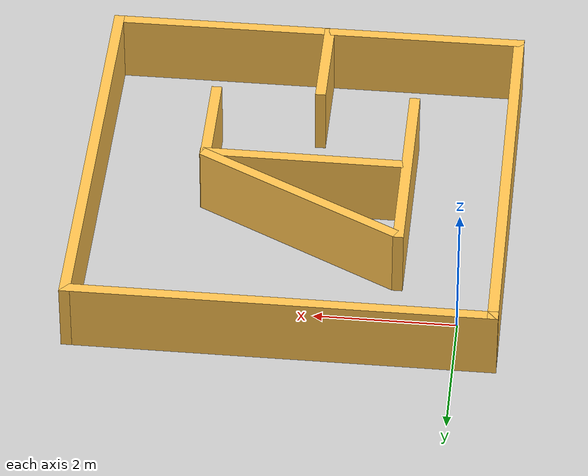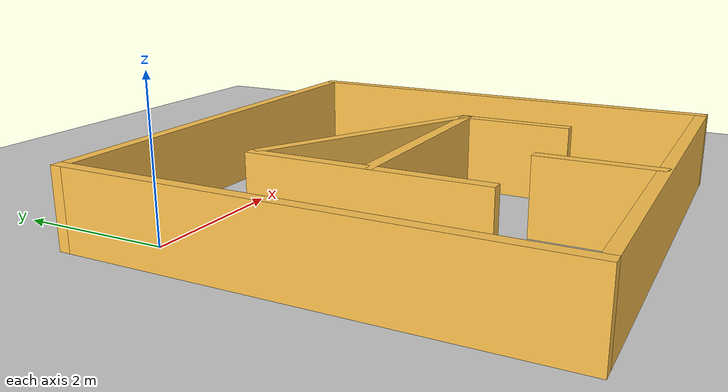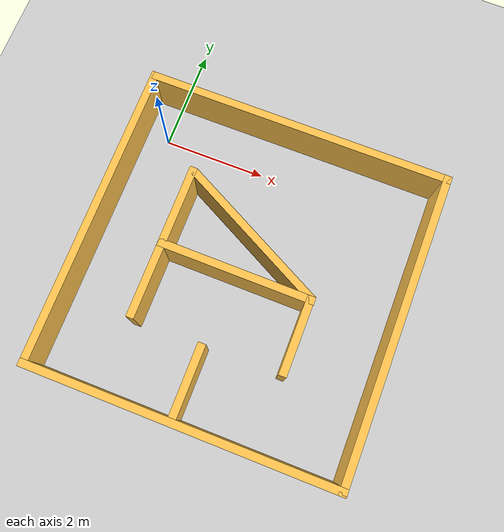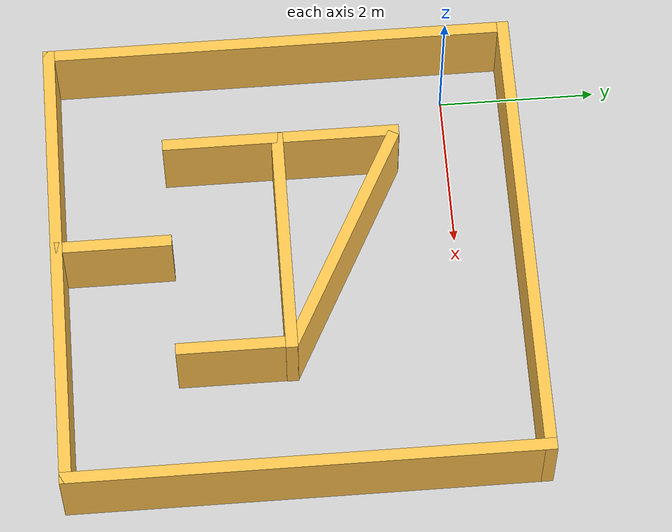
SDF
<sdf version="1.4">
 <world name="default">
  <light name="sun" type="directional">
   <pose>0 0 10 0 -0 0</pose>
   <diffuse>0.8 0.8 0.8 1</diffuse>
   <specular>0.2 0.2 0.2 1</specular>
   <attenuation>
    <range>1000</range>
    <constant>0.9</constant>
    <linear>0.01</linear>
    <quadratic>0.001</quadratic>
   </attenuation>
   <direction>0.5 0.1 -0.9</direction>
  </light>
  <model name="ground_plane">
   <static>1</static>
   <link name="link">
    <collision name="collision">
     <geometry><plane><normal>0 0 1</normal><size>100 100</size></plane></geometry>
     <surface><friction><ode><mu>100</mu><mu2>50</mu2></ode></friction></surface>
    </collision>
    <visual name="visual">
     <cast_shadows>0</cast_shadows>
     <geometry><plane><normal>0 0 1</normal><size>100 100</size></plane></geometry>
     <material>
      <script><uri>file://media/materials/scripts/gazebo.material</uri><name>Gazebo/Grey</name></script>
     </material>
    </visual>
    <velocity_decay><linear>0</linear><angular>0</angular></velocity_decay>
   </link>
  </model>
  <scene><ambient>0.4 0.4 0.4 1</ambient><background>0.7 0.7 0.7 1</background><shadows>0</shadows></scene>
  <physics type="ode">
   <real_time_update_rate>1000.0</real_time_update_rate>
   <max_step_size>0.001</max_step_size>
   <real_time_factor>1</real_time_factor>
   <ode>
    <solver>
     <type>quick</type>
     <iters>150</iters>
     <precon_iters>0</precon_iters>
     <sor>1.400000</sor>
     <use_dynamic_moi_rescaling>1</use_dynamic_moi_rescaling>
    </solver>
    <constraints>
     <cfm>0.00001</cfm>
     <erp>0.2</erp>
     <contact_max_correcting_vel>2000.000000</contact_max_correcting_vel>
     <contact_surface_layer>0.01000</contact_surface_layer>
    </constraints>
   </ode>
  </physics>
  <include><uri>model://Circuit_ql_1</uri><pose>2.4 -2.1 0 0 0 0</pose></include>
 </world>
</sdf>

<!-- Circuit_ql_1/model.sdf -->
<sdf version='1.5'>
  <model name='Circuit_ql_1'>
    <link name='Wall_10'>
      <pose frame=''>-0.0015 2.925 0 0 -0 3.14159</pose>
      <self_collide>0</self_collide>
      <kinematic>0</kinematic>
      <visual name='Wall_10_Visual'>
        <pose frame=''>0 0 0.5 0 -0 0</pose>
        <geometry>
          <box>
            <size>6 0.15 1</size>
          </box>
        </geometry>
        <material>
          <script>
            <uri>file://media/materials/scripts/gazebo.material</uri>
            <name>Gazebo/Grey</name>
          </script>
          <ambient>1 0.764706 0.305882 1</ambient>
          <shader type='pixel'/>
          <diffuse>0.7 0.7 0.7 1</diffuse>
          <specular>0.01 0.01 0.01 1</specular>
          <emissive>0 0 0 1</emissive>
        </material>
        <cast_shadows>1</cast_shadows>
        <transparency>0</transparency>
      </visual>
      <collision name='Wall_10_Collision'>
        <laser_retro>0</laser_retro>
        <max_contacts>10</max_contacts>
        <pose frame=''>0 0 0.5 0 -0 0</pose>
        <geometry>
          <box>
            <size>6 0.15 1</size>
          </box>
        </geometry>
        <surface>
          <friction>
            <ode>
              <mu>1</mu>
              <mu2>1</mu2>
              <fdir1>0 0 0</fdir1>
              <slip1>0</slip1>
              <slip2>0</slip2>
            </ode>
          </friction>
          <bounce>
            <restitution_coefficient>0</restitution_coefficient>
            <threshold>1e+06</threshold>
          </bounce>
          <contact>
            <collide_without_contact>0</collide_without_contact>
            <collide_without_contact_bitmask>1</collide_without_contact_bitmask>
            <collide_bitmask>1</collide_bitmask>
            <ode>
              <soft_cfm>0</soft_cfm>
              <soft_erp>0.2</soft_erp>
              <kp>1e+13</kp>
              <kd>1</kd>
              <max_vel>0.01</max_vel>
              <min_depth>0</min_depth>
            </ode>
            <bullet>
              <split_impulse>1</split_impulse>
              <split_impulse_penetration_threshold>-0.01</split_impulse_penetration_threshold>
              <soft_cfm>0</soft_cfm>
              <soft_erp>0.2</soft_erp>
              <kp>1e+13</kp>
              <kd>1</kd>
            </bullet>
          </contact>
        </surface>
      </collision>
    </link>
    <link name='Wall_11'>
      <pose frame=''>-2.9265 0 0 0 0 -1.5708</pose>
      <self_collide>0</self_collide>
      <kinematic>0</kinematic>
      <visual name='Wall_11_Visual'>
        <pose frame=''>0 0 0.5 0 -0 0</pose>
        <geometry>
          <box>
            <size>6 0.15 1</size>
          </box>
        </geometry>
        <material>
          <script>
            <uri>file://media/materials/scripts/gazebo.material</uri>
            <name>Gazebo/Grey</name>
          </script>
          <ambient>1 0.764706 0.305882 1</ambient>
          <shader type='pixel'/>
          <diffuse>0.7 0.7 0.7 1</diffuse>
          <specular>0.01 0.01 0.01 1</specular>
          <emissive>0 0 0 1</emissive>
        </material>
        <cast_shadows>1</cast_shadows>
        <transparency>0</transparency>
      </visual>
      <collision name='Wall_11_Collision'>
        <laser_retro>0</laser_retro>
        <max_contacts>10</max_contacts>
        <pose frame=''>0 0 0.5 0 -0 0</pose>
        <geometry>
          <box>
            <size>6 0.15 1</size>
          </box>
        </geometry>
        <surface>
          <friction>
            <ode>
              <mu>1</mu>
              <mu2>1</mu2>
              <fdir1>0 0 0</fdir1>
              <slip1>0</slip1>
              <slip2>0</slip2>
            </ode>
          </friction>
          <bounce>
            <restitution_coefficient>0</restitution_coefficient>
            <threshold>1e+06</threshold>
          </bounce>
          <contact>
            <collide_without_contact>0</collide_without_contact>
            <collide_without_contact_bitmask>1</collide_without_contact_bitmask>
            <collide_bitmask>1</collide_bitmask>
            <ode>
              <soft_cfm>0</soft_cfm>
              <soft_erp>0.2</soft_erp>
              <kp>1e+13</kp>
              <kd>1</kd>
              <max_vel>0.01</max_vel>
              <min_depth>0</min_depth>
            </ode>
            <bullet>
              <split_impulse>1</split_impulse>
              <split_impulse_penetration_threshold>-0.01</split_impulse_penetration_threshold>
              <soft_cfm>0</soft_cfm>
              <soft_erp>0.2</soft_erp>
              <kp>1e+13</kp>
              <kd>1</kd>
            </bullet>
          </contact>
        </surface>
      </collision>
    </link>
    <link name='Wall_13'>
      <pose frame=''>-0.1665 -2.238 0 0 -0 1.5708</pose>
      <self_collide>0</self_collide>
      <kinematic>0</kinematic>
      <visual name='Wall_13_Visual'>
        <pose frame=''>0 0 0.5 0 -0 0</pose>
        <geometry>
          <box>
            <size>1.5 0.15 1</size>
          </box>
        </geometry>
        <material>
          <script>
            <uri>file://media/materials/scripts/gazebo.material</uri>
            <name>Gazebo/Grey</name>
          </script>
          <ambient>1 0.764706 0.305882 1</ambient>
          <shader type='pixel'/>
          <diffuse>0.7 0.7 0.7 1</diffuse>
          <specular>0.01 0.01 0.01 1</specular>
          <emissive>0 0 0 1</emissive>
        </material>
        <cast_shadows>1</cast_shadows>
        <transparency>0</transparency>
      </visual>
      <collision name='Wall_13_Collision'>
        <laser_retro>0</laser_retro>
        <max_contacts>10</max_contacts>
        <pose frame=''>0 0 0.5 0 -0 0</pose>
        <geometry>
          <box>
            <size>1.5 0.15 1</size>
          </box>
        </geometry>
        <surface>
          <friction>
            <ode>
              <mu>1</mu>
              <mu2>1</mu2>
              <fdir1>0 0 0</fdir1>
              <slip1>0</slip1>
              <slip2>0</slip2>
            </ode>
          </friction>
          <bounce>
            <restitution_coefficient>0</restitution_coefficient>
            <threshold>1e+06</threshold>
          </bounce>
          <contact>
            <collide_without_contact>0</collide_without_contact>
            <collide_without_contact_bitmask>1</collide_without_contact_bitmask>
            <collide_bitmask>1</collide_bitmask>
            <ode>
              <soft_cfm>0</soft_cfm>
              <soft_erp>0.2</soft_erp>
              <kp>1e+13</kp>
              <kd>1</kd>
              <max_vel>0.01</max_vel>
              <min_depth>0</min_depth>
            </ode>
            <bullet>
              <split_impulse>1</split_impulse>
              <split_impulse_penetration_threshold>-0.01</split_impulse_penetration_threshold>
              <soft_cfm>0</soft_cfm>
              <soft_erp>0.2</soft_erp>
              <kp>1e+13</kp>
              <kd>1</kd>
            </bullet>
          </contact>
        </surface>
      </collision>
    </link>
    <link name='Wall_13_clone'>
      <pose frame=''>1.32944 -0.77198 0 0 -0 1.5708</pose>
      <self_collide>0</self_collide>
      <kinematic>0</kinematic>
      <visual name='ModelPreview_1::Wall_13_clone::Wall_13_Visual'>
        <pose frame=''>0 0 0.5 0 -0 0</pose>
        <geometry>
          <box>
            <size>1.5 0.15 1</size>
          </box>
        </geometry>
        <material>
          <script>
            <uri>file://media/materials/scripts/gazebo.material</uri>
            <name>Gazebo/Grey</name>
          </script>
          <ambient>1 0.764706 0.305882 1</ambient>
          <shader type='pixel'/>
          <diffuse>0.7 0.7 0.7 1</diffuse>
          <specular>0.01 0.01 0.01 1</specular>
          <emissive>0 0 0 1</emissive>
        </material>
        <cast_shadows>1</cast_shadows>
        <transparency>0</transparency>
      </visual>
      <collision name='Wall_13_Collision'>
        <laser_retro>0</laser_retro>
        <max_contacts>10</max_contacts>
        <pose frame=''>0 0 0.5 0 -0 0</pose>
        <geometry>
          <box>
            <size>1.5 0.15 1</size>
          </box>
        </geometry>
        <surface>
          <friction>
            <ode>
              <mu>1</mu>
              <mu2>1</mu2>
              <fdir1>0 0 0</fdir1>
              <slip1>0</slip1>
              <slip2>0</slip2>
            </ode>
          </friction>
          <bounce>
            <restitution_coefficient>0</restitution_coefficient>
            <threshold>1e+06</threshold>
          </bounce>
          <contact>
            <collide_without_contact>0</collide_without_contact>
            <collide_without_contact_bitmask>1</collide_without_contact_bitmask>
            <collide_bitmask>1</collide_bitmask>
            <ode>
              <soft_cfm>0</soft_cfm>
              <soft_erp>0.2</soft_erp>
              <kp>1e+13</kp>
              <kd>1</kd>
              <max_vel>0.01</max_vel>
              <min_depth>0</min_depth>
            </ode>
            <bullet>
              <split_impulse>1</split_impulse>
              <split_impulse_penetration_threshold>-0.01</split_impulse_penetration_threshold>
              <soft_cfm>0</soft_cfm>
              <soft_erp>0.2</soft_erp>
              <kp>1e+13</kp>
              <kd>1</kd>
            </bullet>
          </contact>
        </surface>
      </collision>
    </link>
    <link name='Wall_15'>
      <pose frame=''>-1.51922 -0.038071 0 0 -0 1.5708</pose>
      <self_collide>0</self_collide>
      <kinematic>0</kinematic>
      <visual name='Wall_15_Visual'>
        <pose frame=''>0 0 0.5 0 -0 0</pose>
        <geometry>
          <box>
            <size>3 0.15 1</size>
          </box>
        </geometry>
        <material>
          <script>
            <uri>file://media/materials/scripts/gazebo.material</uri>
            <name>Gazebo/Grey</name>
          </script>
          <ambient>1 0.764706 0.305882 1</ambient>
          <shader type='pixel'/>
          <diffuse>0.7 0.7 0.7 1</diffuse>
          <specular>0.01 0.01 0.01 1</specular>
          <emissive>0 0 0 1</emissive>
        </material>
        <cast_shadows>1</cast_shadows>
        <transparency>0</transparency>
      </visual>
      <collision name='Wall_15_Collision'>
        <laser_retro>0</laser_retro>
        <max_contacts>10</max_contacts>
        <pose frame=''>0 0 0.5 0 -0 0</pose>
        <geometry>
          <box>
            <size>3 0.15 1</size>
          </box>
        </geometry>
        <surface>
          <friction>
            <ode>
              <mu>1</mu>
              <mu2>1</mu2>
              <fdir1>0 0 0</fdir1>
              <slip1>0</slip1>
              <slip2>0</slip2>
            </ode>
          </friction>
          <bounce>
            <restitution_coefficient>0</restitution_coefficient>
            <threshold>1e+06</threshold>
          </bounce>
          <contact>
            <collide_without_contact>0</collide_without_contact>
            <collide_without_contact_bitmask>1</collide_without_contact_bitmask>
            <collide_bitmask>1</collide_bitmask>
            <ode>
              <soft_cfm>0</soft_cfm>
              <soft_erp>0.2</soft_erp>
              <kp>1e+13</kp>
              <kd>1</kd>
              <max_vel>0.01</max_vel>
              <min_depth>0</min_depth>
            </ode>
            <bullet>
              <split_impulse>1</split_impulse>
              <split_impulse_penetration_threshold>-0.01</split_impulse_penetration_threshold>
              <soft_cfm>0</soft_cfm>
              <soft_erp>0.2</soft_erp>
              <kp>1e+13</kp>
              <kd>1</kd>
            </bullet>
          </contact>
        </surface>
      </collision>
    </link>
    <link name='Wall_15_clone'>
      <pose frame=''>-0.089166 -0.090738 0 0 0 -0.004296</pose>
      <self_collide>0</self_collide>
      <kinematic>0</kinematic>
      <visual name='ModelPreview_1::Wall_15_clone::Wall_15_Visual'>
        <pose frame=''>0 0 0.5 0 -0 0</pose>
        <geometry>
          <box>
            <size>3 0.15 1</size>
          </box>
        </geometry>
        <material>
          <script>
            <uri>file://media/materials/scripts/gazebo.material</uri>
            <name>Gazebo/Grey</name>
          </script>
          <ambient>1 0.764706 0.305882 1</ambient>
          <shader type='pixel'/>
          <diffuse>0.7 0.7 0.7 1</diffuse>
          <specular>0.01 0.01 0.01 1</specular>
          <emissive>0 0 0 1</emissive>
        </material>
        <cast_shadows>1</cast_shadows>
        <transparency>0</transparency>
      </visual>
      <collision name='Wall_15_Collision'>
        <laser_retro>0</laser_retro>
        <max_contacts>10</max_contacts>
        <pose frame=''>0 0 0.5 0 -0 0</pose>
        <geometry>
          <box>
            <size>3 0.15 1</size>
          </box>
        </geometry>
        <surface>
          <friction>
            <ode>
              <mu>1</mu>
              <mu2>1</mu2>
              <fdir1>0 0 0</fdir1>
              <slip1>0</slip1>
              <slip2>0</slip2>
            </ode>
          </friction>
          <bounce>
            <restitution_coefficient>0</restitution_coefficient>
            <threshold>1e+06</threshold>
          </bounce>
          <contact>
            <collide_without_contact>0</collide_without_contact>
            <collide_without_contact_bitmask>1</collide_without_contact_bitmask>
            <collide_bitmask>1</collide_bitmask>
            <ode>
              <soft_cfm>0</soft_cfm>
              <soft_erp>0.2</soft_erp>
              <kp>1e+13</kp>
              <kd>1</kd>
              <max_vel>0.01</max_vel>
              <min_depth>0</min_depth>
            </ode>
            <bullet>
              <split_impulse>1</split_impulse>
              <split_impulse_penetration_threshold>-0.01</split_impulse_penetration_threshold>
              <soft_cfm>0</soft_cfm>
              <soft_erp>0.2</soft_erp>
              <kp>1e+13</kp>
              <kd>1</kd>
            </bullet>
          </contact>
        </surface>
      </collision>
    </link>
    <link name='Wall_15_clone_0'>
      <pose frame=''>-0.053217 0.650721 0 0 0 -0.479256</pose>
      <self_collide>0</self_collide>
      <kinematic>0</kinematic>
      <visual name='ModelPreview_1::Wall_15_clone_0::Wall_15_Visual'>
        <pose frame=''>0 0 0.5 0 -0 0</pose>
        <geometry>
          <box>
            <size>3.22377 0.15 1</size>
          </box>
        </geometry>
        <material>
          <script>
            <uri>file://media/materials/scripts/gazebo.material</uri>
            <name>Gazebo/Grey</name>
          </script>
          <ambient>1 0.764706 0.305882 1</ambient>
          <shader type='pixel'/>
          <diffuse>0.7 0.7 0.7 1</diffuse>
          <specular>0.01 0.01 0.01 1</specular>
          <emissive>0 0 0 1</emissive>
        </material>
        <cast_shadows>1</cast_shadows>
        <transparency>0</transparency>
      </visual>
      <collision name='Wall_15_Collision'>
        <laser_retro>0</laser_retro>
        <max_contacts>10</max_contacts>
        <pose frame=''>0 0 0.5 0 -0 0</pose>
        <geometry>
          <box>
            <size>3.22377 0.15 1</size>
          </box>
        </geometry>
        <surface>
          <friction>
            <ode>
              <mu>1</mu>
              <mu2>1</mu2>
              <fdir1>0 0 0</fdir1>
              <slip1>0</slip1>
              <slip2>0</slip2>
            </ode>
          </friction>
          <bounce>
            <restitution_coefficient>0</restitution_coefficient>
            <threshold>1e+06</threshold>
          </bounce>
          <contact>
            <collide_without_contact>0</collide_without_contact>
            <collide_without_contact_bitmask>1</collide_without_contact_bitmask>
            <collide_bitmask>1</collide_bitmask>
            <ode>
              <soft_cfm>0</soft_cfm>
              <soft_erp>0.2</soft_erp>
              <kp>1e+13</kp>
              <kd>1</kd>
              <max_vel>0.01</max_vel>
              <min_depth>0</min_depth>
            </ode>
            <bullet>
              <split_impulse>1</split_impulse>
              <split_impulse_penetration_threshold>-0.01</split_impulse_penetration_threshold>
              <soft_cfm>0</soft_cfm>
              <soft_erp>0.2</soft_erp>
              <kp>1e+13</kp>
              <kd>1</kd>
            </bullet>
          </contact>
        </surface>
      </collision>
    </link>
    <link name='Wall_6'>
      <pose frame=''>-0.0015 -2.925 0 0 -0 0</pose>
      <self_collide>0</self_collide>
      <kinematic>0</kinematic>
      <visual name='Wall_6_Visual'>
        <pose frame=''>0 0 0.5 0 -0 0</pose>
        <geometry>
          <box>
            <size>6 0.15 1</size>
          </box>
        </geometry>
        <material>
          <script>
            <uri>file://media/materials/scripts/gazebo.material</uri>
            <name>Gazebo/Grey</name>
          </script>
          <ambient>1 0.764706 0.305882 1</ambient>
          <shader type='pixel'/>
          <diffuse>0.7 0.7 0.7 1</diffuse>
          <specular>0.01 0.01 0.01 1</specular>
          <emissive>0 0 0 1</emissive>
        </material>
        <cast_shadows>1</cast_shadows>
        <transparency>0</transparency>
      </visual>
      <collision name='Wall_6_Collision'>
        <laser_retro>0</laser_retro>
        <max_contacts>10</max_contacts>
        <pose frame=''>0 0 0.5 0 -0 0</pose>
        <geometry>
          <box>
            <size>6 0.15 1</size>
          </box>
        </geometry>
        <surface>
          <friction>
            <ode>
              <mu>1</mu>
              <mu2>1</mu2>
              <fdir1>0 0 0</fdir1>
              <slip1>0</slip1>
              <slip2>0</slip2>
            </ode>
          </friction>
          <bounce>
            <restitution_coefficient>0</restitution_coefficient>
            <threshold>1e+06</threshold>
          </bounce>
          <contact>
            <collide_without_contact>0</collide_without_contact>
            <collide_without_contact_bitmask>1</collide_without_contact_bitmask>
            <collide_bitmask>1</collide_bitmask>
            <ode>
              <soft_cfm>0</soft_cfm>
              <soft_erp>0.2</soft_erp>
              <kp>1e+13</kp>
              <kd>1</kd>
              <max_vel>0.01</max_vel>
              <min_depth>0</min_depth>
            </ode>
            <bullet>
              <split_impulse>1</split_impulse>
              <split_impulse_penetration_threshold>-0.01</split_impulse_penetration_threshold>
              <soft_cfm>0</soft_cfm>
              <soft_erp>0.2</soft_erp>
              <kp>1e+13</kp>
              <kd>1</kd>
            </bullet>
          </contact>
        </surface>
      </collision>
    </link>
    <link name='Wall_7'>
      <pose frame=''>2.9235 0 0 0 -0 1.5708</pose>
      <self_collide>0</self_collide>
      <kinematic>0</kinematic>
      <visual name='Wall_7_Visual'>
        <pose frame=''>0 0 0.5 0 -0 0</pose>
        <geometry>
          <box>
            <size>6 0.15 1</size>
          </box>
        </geometry>
        <material>
          <script>
            <uri>file://media/materials/scripts/gazebo.material</uri>
            <name>Gazebo/Grey</name>
          </script>
          <ambient>1 0.764706 0.305882 1</ambient>
          <shader type='pixel'/>
          <diffuse>0.7 0.7 0.7 1</diffuse>
          <specular>0.01 0.01 0.01 1</specular>
          <emissive>0 0 0 1</emissive>
        </material>
        <cast_shadows>1</cast_shadows>
        <transparency>0</transparency>
      </visual>
      <collision name='Wall_7_Collision'>
        <laser_retro>0</laser_retro>
        <max_contacts>10</max_contacts>
        <pose frame=''>0 0 0.5 0 -0 0</pose>
        <geometry>
          <box>
            <size>6 0.15 1</size>
          </box>
        </geometry>
        <surface>
          <friction>
            <ode>
              <mu>1</mu>
              <mu2>1</mu2>
              <fdir1>0 0 0</fdir1>
              <slip1>0</slip1>
              <slip2>0</slip2>
            </ode>
          </friction>
          <bounce>
            <restitution_coefficient>0</restitution_coefficient>
            <threshold>1e+06</threshold>
          </bounce>
          <contact>
            <collide_without_contact>0</collide_without_contact>
            <collide_without_contact_bitmask>1</collide_without_contact_bitmask>
            <collide_bitmask>1</collide_bitmask>
            <ode>
              <soft_cfm>0</soft_cfm>
              <soft_erp>0.2</soft_erp>
              <kp>1e+13</kp>
              <kd>1</kd>
              <max_vel>0.01</max_vel>
              <min_depth>0</min_depth>
            </ode>
            <bullet>
              <split_impulse>1</split_impulse>
              <split_impulse_penetration_threshold>-0.01</split_impulse_penetration_threshold>
              <soft_cfm>0</soft_cfm>
              <soft_erp>0.2</soft_erp>
              <kp>1e+13</kp>
              <kd>1</kd>
            </bullet>
          </contact>
        </surface>
      </collision>
    </link>
    <static>1</static>
    <allow_auto_disable>1</allow_auto_disable>
  </model>
</sdf>
